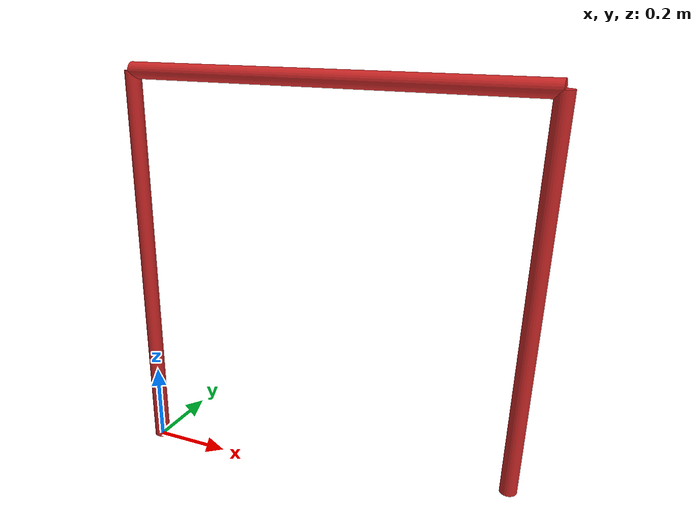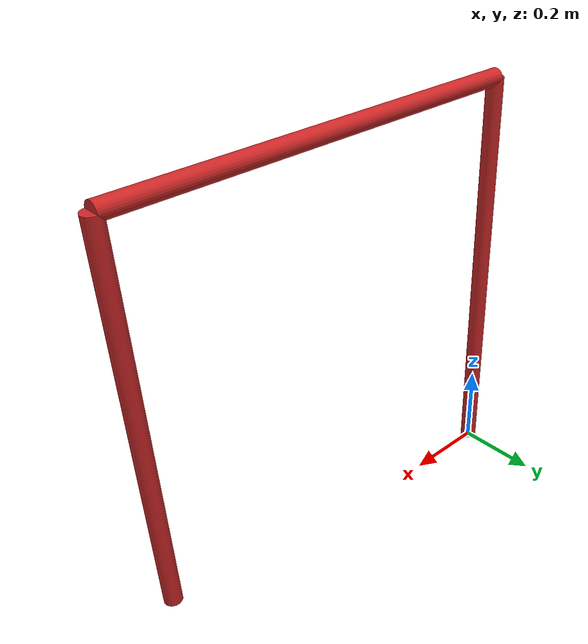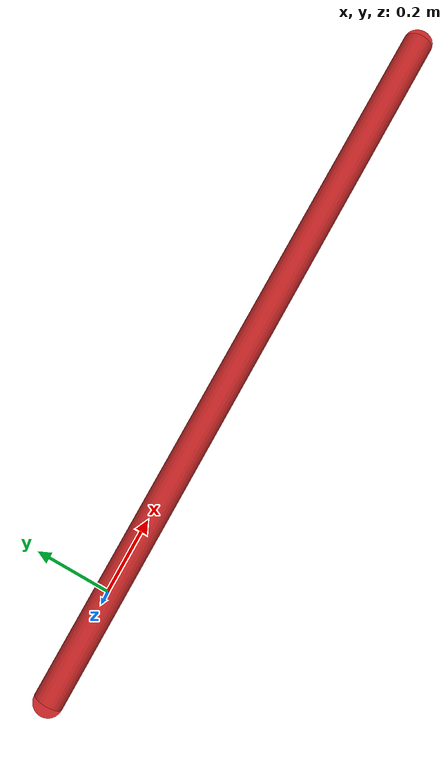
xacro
<?xml version="1.0"?>
<robot name="atrias"
       xmlns:sensor="http://playerstage.sourceforge.net/gazebo/xmlschema/#sensor"
       xmlns:controller="http://playerstage.sourceforge.net/gazebo/xmlschema/#controller"
       xmlns:joint="http://playerstage.sourceforge.net/gazebo/xmlschema/#slider"
			 xmlns:xacro="http://www.ros.org/wiki/xacro"
       xmlns:interface="http://playerstage.sourceforge.net/gazebo/xmlschema/#interface"
			 xmlns:model="http://playerstage.sourceforge.net/gazebo/xmlschema/#model"
			 xmlns:geo="http://willowgarage.com/xmlschema/#geo"
			 xmlns:geom="http://playerstage.sourceforge.net/gazebo/xmlschema/#geom"
			 xmlns:body="http://playerstage.sourceforge.net/gazebo/xmlschema/#body" >

	<include filename="boomTest.urdf.xacro" />

  <xacro:atrias_robot></xacro:atrias_robot>

<!-- Controller was setup here -->

</robot>

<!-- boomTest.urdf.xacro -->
<robot name="atrias_robot"
	xmlns:sensor="http://playerstage.sourceforge.net/gazebo/xmlschema/#sensor"
	xmlns:controller="http://playerstage.sourceforge.net/gazebo/xmlschema/#controller"
	xmlns:joint="http://playerstage.sourceforge.net/gazebo/xmlschema/#slider"
	xmlns:xacro="http://www.ros.org/wiki/xacro"
	xmlns:interface="http://playerstage.sourceforge.net/gazebo/xmlschema/#interface"
	xmlns:model="http://playerstage.sourceforge.net/gazebo/xmlschema/#model"
	xmlns:geo="http://willowgarage.com/xmlschema/#geo"
	xmlns:geom="http://playerstage.sourceforge.net/gazebo/xmlschema/#geom"
	xmlns:body="http://playerstage.sourceforge.net/gazebo/xmlschema/#body" >

	<!-- Constants -->
	<property name="M_PI" value="3.14159"/>
	<property name="SQRT_2" value="1.41421356"/>

	<!-- Physical Properties -->
	<property name="upright_length" value="1" />
	<property name="boom_length" value="1" />
	<property name="pendulum_length" value="0.9" />
	<property name="spring_stiffness" value="3.5" />
	<property name="leg_seg_damping" value="0" />

	<!-- Initial Condition -->
	<property name="initial_height" value="${upright_length/SQRT_2 + B_length/SQRT_2}" />

	<!-- Visual Properties -->
	<property name="body_size" value="0.25 0.15 0.15" />
	<property name="leg_segment_radius" value="0.02" />

	<xacro:macro name="atrias_robot">

		<link name="world" />

		<!--				 Upright				-->

		<joint name="world_upright_joint" type="fixed">
			<!-- anchor xyz="0 0 0" / -->
			<axis xyz="0 0 1" rpy="0 0 0" />
			<origin xyz="0 0 0" rpy="0 0 0" />
			<parent link="world" />
			<child link="upright_link"/>
		</joint>

		<link name="upright_link">
			<inertial>
				<mass value="0.66149"/>
				<origin xyz="0 0 ${upright_length/2}" rpy="0 0 0" />
				<inertia ixx="0.01910" ixy="0" ixz="0"
				         iyy="0.01910" iyz="0"
				         izz="0.01910" />
			</inertial>
			<visual>
				<origin xyz="0 0 ${upright_length/2}" rpy="0 0 0" />
				<geometry>
				  <cylinder length="${upright_length}" radius="${leg_segment_radius}" />
				</geometry>
			</visual>
			<collision>
				<origin xyz="0 0 ${upright_length/2}" rpy="0 0 0"  />
				<geometry>
					<cylinder length="${upright_length}" radius="${leg_segment_radius}" />
				</geometry>
			</collision>
		</link>
		<gazebo reference="upright_link">
			<material>Gazebo/Red</material>
		</gazebo>

		<!--				 Boom					-->

		<joint name="upright_boom_joint" type="fixed">
			<axis xyz="0 0 1" />
			<!-- anchor xyz="0 0 0" / -->
			<origin xyz="0 0 ${upright_length}" rpy="0 0 0" />
			<parent link="upright_link" />
			<child link="boom_link"/>
		</joint>

		<link name="boom_link">
			<inertial>
				<mass value="0.68292"/>
				<origin xyz="${boom_length/2} 0 0" rpy="0 0 0" />
				<inertia ixx="0.02116" ixy="0" ixz="0"
				         iyy="0.02116" iyz="0"
				         izz="0.02116" />
			</inertial>
			<visual>
				<origin xyz="${boom_length/2} 0 0" rpy="0 ${M_PI/2} 0" />
				<geometry>
				  <cylinder length="${boom_length}" radius="${leg_segment_radius}" />
				</geometry>
			</visual>
			<collision>
				<origin xyz="${boom_length/2} 0 0" rpy="0 ${M_PI/2} 0" />
				<geometry>
					<cylinder length="${boom_length}" radius="${leg_segment_radius}" />
				</geometry>
			</collision>
		</link>

		<gazebo reference="boom_link">
			<material>Gazebo/Red</material>
			<static>true</static>
		</gazebo>

		<!--				 Pendulum                                    -->

		<joint name="pendulum_joint" type="continuous">
			<axis xyz="0 1 0" />
			<origin xyz="${boom_length} 0 0" rpy="0 ${M_PI/18/5} 0" />
			<parent link="boom_link" />
			<child link="pendulum_link"/>
		</joint>

		<link name="pendulum_link">
			<inertial>
				<mass value="1"/>
				<origin xyz="0 0 ${-pendulum_length/2}" rpy="0 0 0" />
				<inertia ixx="0.245" ixy="0" ixz="0"
				         iyy="0.245" iyz="0"
				         izz="0.245" />
			</inertial>
			<visual>
				<origin xyz="0 0 ${-pendulum_length/2}" rpy="0 0 0" />
				<geometry>
				  <cylinder length="${pendulum_length}" radius="${leg_segment_radius}" />
				</geometry>
			</visual>
			<collision>
				<origin xyz="0 0 ${-pendulum_length/2}" rpy="0 0 0" />
				<geometry>
					<cylinder length="${pendulum_length}" radius="${leg_segment_radius}" />
				</geometry>
			</collision>
		</link>

		<gazebo reference="pendulum_link">
			<material>Gazebo/Red</material>
		</gazebo>

		<gazebo>
			<controller:spring name="pendulum_spring" plugin="libspring.so">
				<alwaysOn> true </alwaysOn>
				<updateRate> 10000 </updateRate>
				<bodyName1> upright_link </bodyName1>
				<bodyName2> pendulum_link </bodyName2>
				<rotationalStiffness> ${spring_stiffness} </rotationalStiffness>
			</controller:spring>
		</gazebo>
		<gazebo>
			<controller:gazebo_ros_p3d name="p3d_base_controller" plugin="libgazebo_ros_p3d.so">
						   <alwaysOn>true</alwaysOn>
						   <updateRate>100.0</updateRate>
						   <bodyName>pendulum_link</bodyName>
						   <topicName>pendulum_pose_ground_truth</topicName>
						   <gaussianNoise>0.01</gaussianNoise>
						   <frameName>map</frameName>
						   <xyzOffsets>25.7 25.7 0</xyzOffsets> <!-- initialize odometry for fake localization-->
						   <rpyOffsets>0 0 0</rpyOffsets>
						   <interface:position name="p3d_base_position"/>
			</controller:gazebo_ros_p3d>

		</gazebo>

	</xacro:macro>

</robot>
